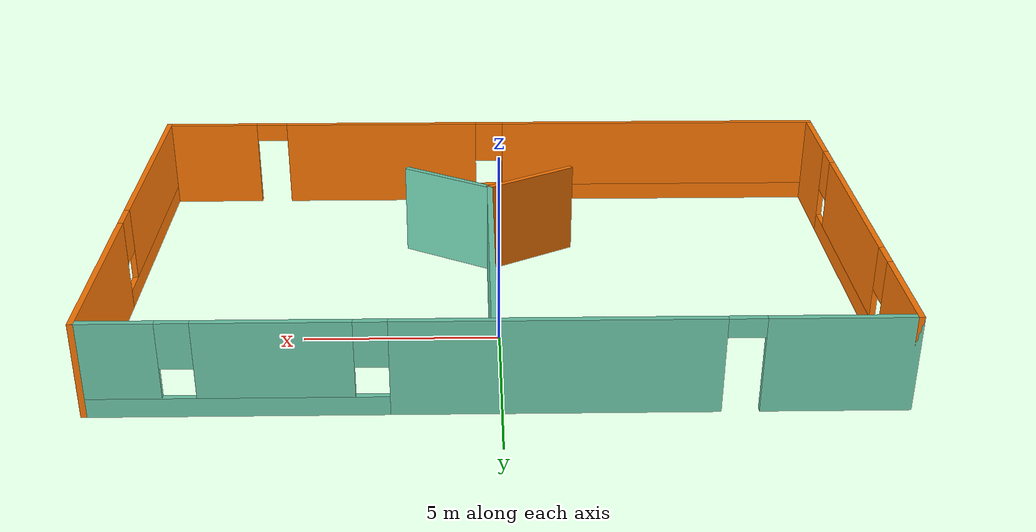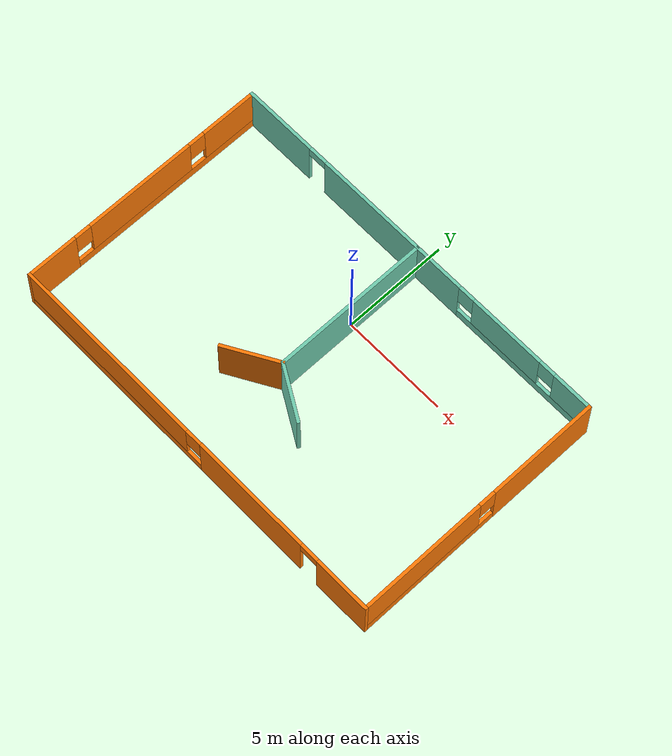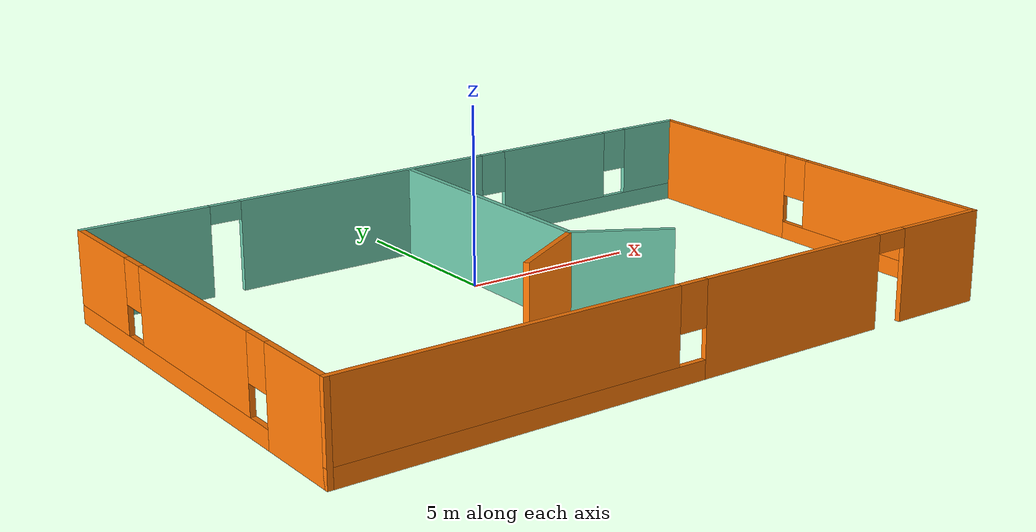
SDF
<?xml version='1.0'?>
<sdf version='1.6'>
  <model name='my_world'>
    <pose frame=''>0.104983 -2.59147 0 0 -0 0</pose>
    <link name='Wall_0'>
      <pose frame=''>0 6.05 0 0 -0 0</pose>
      <visual name='Wall_0_Visual_0'>
        <pose frame=''>-7.95518 0 1.25 0 -0 0</pose>
        <geometry>
          <box>
            <size>3.58965 0.15 2.5</size>
          </box>
        </geometry>
        <material>
          <script>
            <uri>file://media/materials/scripts/gazebo.material</uri>
            <name>Gazebo/Grey</name>
          </script>
          <ambient>0.435294 0.796078 0.67451 1</ambient>
        </material>
        <meta>
          <layer>0</layer>
        </meta>
      </visual>
      <collision name='Wall_0_Collision_0'>
        <geometry>
          <box>
            <size>3.58965 0.15 2.5</size>
          </box>
        </geometry>
        <pose frame=''>-7.95518 0 1.25 0 -0 0</pose>
      </collision>
      <visual name='Wall_0_Visual_1'>
        <pose frame=''>-1.37684 0 1.25 0 -0 0</pose>
        <geometry>
          <box>
            <size>7.76704 0.15 2.5</size>
          </box>
        </geometry>
        <material>
          <script>
            <uri>file://media/materials/scripts/gazebo.material</uri>
            <name>Gazebo/Grey</name>
          </script>
          <ambient>0.435294 0.796078 0.67451 1</ambient>
        </material>
        <meta>
          <layer>0</layer>
        </meta>
      </visual>
      <collision name='Wall_0_Collision_1'>
        <geometry>
          <box>
            <size>7.76704 0.15 2.5</size>
          </box>
        </geometry>
        <pose frame=''>-1.37684 0 1.25 0 -0 0</pose>
      </collision>
      <visual name='Wall_0_Visual_2'>
        <pose frame=''>6.12834 0 0.25 0 -0 0</pose>
        <geometry>
          <box>
            <size>7.24332 0.15 0.5</size>
          </box>
        </geometry>
        <material>
          <script>
            <uri>file://media/materials/scripts/gazebo.material</uri>
            <name>Gazebo/Grey</name>
          </script>
          <ambient>0.435294 0.796078 0.67451 1</ambient>
        </material>
        <meta>
          <layer>0</layer>
        </meta>
      </visual>
      <collision name='Wall_0_Collision_2'>
        <geometry>
          <box>
            <size>7.24332 0.15 0.5</size>
          </box>
        </geometry>
        <pose frame=''>6.12834 0 0.25 0 -0 0</pose>
      </collision>
      <visual name='Wall_0_Visual_3'>
        <pose frame=''>5.15197 0 1.5 0 -0 0</pose>
        <geometry>
          <box>
            <size>3.69057 0.15 2</size>
          </box>
        </geometry>
        <material>
          <script>
            <uri>file://media/materials/scripts/gazebo.material</uri>
            <name>Gazebo/Grey</name>
          </script>
          <ambient>0.435294 0.796078 0.67451 1</ambient>
        </material>
        <meta>
          <layer>0</layer>
        </meta>
      </visual>
      <collision name='Wall_0_Collision_3'>
        <geometry>
          <box>
            <size>3.69057 0.15 2</size>
          </box>
        </geometry>
        <pose frame=''>5.15197 0 1.5 0 -0 0</pose>
      </collision>
      <visual name='Wall_0_Visual_4'>
        <pose frame=''>8.77363 0 1.5 0 -0 0</pose>
        <geometry>
          <box>
            <size>1.95275 0.15 2</size>
          </box>
        </geometry>
        <material>
          <script>
            <uri>file://media/materials/scripts/gazebo.material</uri>
            <name>Gazebo/Grey</name>
          </script>
          <ambient>0.435294 0.796078 0.67451 1</ambient>
        </material>
        <meta>
          <layer>0</layer>
        </meta>
      </visual>
      <collision name='Wall_0_Collision_4'>
        <geometry>
          <box>
            <size>1.95275 0.15 2</size>
          </box>
        </geometry>
        <pose frame=''>8.77363 0 1.5 0 -0 0</pose>
      </collision>
      <visual name='Wall_0_Visual_5'>
        <pose frame=''>2.90668 0 1.9 0 -0 0</pose>
        <geometry>
          <box>
            <size>0.8 0.15 1.2</size>
          </box>
        </geometry>
        <material>
          <script>
            <uri>file://media/materials/scripts/gazebo.material</uri>
            <name>Gazebo/Grey</name>
          </script>
          <ambient>0.435294 0.796078 0.67451 1</ambient>
        </material>
        <meta>
          <layer>0</layer>
        </meta>
      </visual>
      <collision name='Wall_0_Collision_5'>
        <geometry>
          <box>
            <size>0.8 0.15 1.2</size>
          </box>
        </geometry>
        <pose frame=''>2.90668 0 1.9 0 -0 0</pose>
      </collision>
      <visual name='Wall_0_Visual_6'>
        <pose frame=''>7.39725 0 1.9 0 -0 0</pose>
        <geometry>
          <box>
            <size>0.8 0.15 1.2</size>
          </box>
        </geometry>
        <material>
          <script>
            <uri>file://media/materials/scripts/gazebo.material</uri>
            <name>Gazebo/Grey</name>
          </script>
          <ambient>0.435294 0.796078 0.67451 1</ambient>
        </material>
        <meta>
          <layer>0</layer>
        </meta>
      </visual>
      <collision name='Wall_0_Collision_6'>
        <geometry>
          <box>
            <size>0.8 0.15 1.2</size>
          </box>
        </geometry>
        <pose frame=''>7.39725 0 1.9 0 -0 0</pose>
      </collision>
      <visual name='Wall_0_Visual_7'>
        <pose frame=''>-5.71035 0 2.25 0 -0 0</pose>
        <geometry>
          <box>
            <size>0.9 0.15 0.5</size>
          </box>
        </geometry>
        <material>
          <script>
            <uri>file://media/materials/scripts/gazebo.material</uri>
            <name>Gazebo/Grey</name>
          </script>
          <ambient>0.435294 0.796078 0.67451 1</ambient>
        </material>
        <meta>
          <layer>0</layer>
        </meta>
      </visual>
      <collision name='Wall_0_Collision_7'>
        <geometry>
          <box>
            <size>0.9 0.15 0.5</size>
          </box>
        </geometry>
        <pose frame=''>-5.71035 0 2.25 0 -0 0</pose>
      </collision>
    </link>
    <link name='Wall_1'>
      <pose frame=''>9.675 0 0 0 0 -1.5708</pose>
      <visual name='Wall_1_Visual_0'>
        <pose frame=''>-3.47584 0 1.25 0 -0 0</pose>
        <geometry>
          <box>
            <size>5.29833 0.15 2.5</size>
          </box>
        </geometry>
        <material>
          <script>
            <uri>file://media/materials/scripts/gazebo.material</uri>
            <name>Gazebo/Grey</name>
          </script>
          <ambient>0.996078 0.47451 0.0196078 1</ambient>
        </material>
        <meta>
          <layer>0</layer>
        </meta>
      </visual>
      <collision name='Wall_1_Collision_0'>
        <geometry>
          <box>
            <size>5.29833 0.15 2.5</size>
          </box>
        </geometry>
        <pose frame=''>-3.47584 0 1.25 0 -0 0</pose>
      </collision>
      <visual name='Wall_1_Visual_1'>
        <pose frame=''>2.64916 0 0.25 0 -0 0</pose>
        <geometry>
          <box>
            <size>6.95167 0.15 0.5</size>
          </box>
        </geometry>
        <material>
          <script>
            <uri>file://media/materials/scripts/gazebo.material</uri>
            <name>Gazebo/Grey</name>
          </script>
          <ambient>0.996078 0.47451 0.0196078 1</ambient>
        </material>
        <meta>
          <layer>0</layer>
        </meta>
      </visual>
      <collision name='Wall_1_Collision_1'>
        <geometry>
          <box>
            <size>6.95167 0.15 0.5</size>
          </box>
        </geometry>
        <pose frame=''>2.64916 0 0.25 0 -0 0</pose>
      </collision>
      <visual name='Wall_1_Visual_2'>
        <pose frame=''>3.04916 0 1.5 0 -0 0</pose>
        <geometry>
          <box>
            <size>6.15168 0.15 2</size>
          </box>
        </geometry>
        <material>
          <script>
            <uri>file://media/materials/scripts/gazebo.material</uri>
            <name>Gazebo/Grey</name>
          </script>
          <ambient>0.996078 0.47451 0.0196078 1</ambient>
        </material>
        <meta>
          <layer>0</layer>
        </meta>
      </visual>
      <collision name='Wall_1_Collision_2'>
        <geometry>
          <box>
            <size>6.15168 0.15 2</size>
          </box>
        </geometry>
        <pose frame=''>3.04916 0 1.5 0 -0 0</pose>
      </collision>
      <visual name='Wall_1_Visual_3'>
        <pose frame=''>-0.426675 0 1.9 0 -0 0</pose>
        <geometry>
          <box>
            <size>0.8 0.15 1.2</size>
          </box>
        </geometry>
        <material>
          <script>
            <uri>file://media/materials/scripts/gazebo.material</uri>
            <name>Gazebo/Grey</name>
          </script>
          <ambient>0.996078 0.47451 0.0196078 1</ambient>
        </material>
        <meta>
          <layer>0</layer>
        </meta>
      </visual>
      <collision name='Wall_1_Collision_3'>
        <geometry>
          <box>
            <size>0.8 0.15 1.2</size>
          </box>
        </geometry>
        <pose frame=''>-0.426675 0 1.9 0 -0 0</pose>
      </collision>
    </link>
    <link name='Wall_2'>
      <pose frame=''>0 -6.05 0 0 -0 3.14159</pose>
      <visual name='Wall_2_Visual_0'>
        <pose frame=''>-8.39407 0 1.25 0 -0 0</pose>
        <geometry>
          <box>
            <size>2.71186 0.15 2.5</size>
          </box>
        </geometry>
        <material>
          <script>
            <uri>file://media/materials/scripts/gazebo.material</uri>
            <name>Gazebo/Grey</name>
          </script>
          <ambient>0.996078 0.47451 0.0196078 1</ambient>
        </material>
        <meta>
          <layer>0</layer>
        </meta>
      </visual>
      <collision name='Wall_2_Collision_0'>
        <geometry>
          <box>
            <size>2.71186 0.15 2.5</size>
          </box>
        </geometry>
        <pose frame=''>-8.39407 0 1.25 0 -0 0</pose>
      </collision>
      <visual name='Wall_2_Visual_1'>
        <pose frame=''>-3.28624 0 1.25 0 -0 0</pose>
        <geometry>
          <box>
            <size>5.7038 0.15 2.5</size>
          </box>
        </geometry>
        <material>
          <script>
            <uri>file://media/materials/scripts/gazebo.material</uri>
            <name>Gazebo/Grey</name>
          </script>
          <ambient>0.996078 0.47451 0.0196078 1</ambient>
        </material>
        <meta>
          <layer>0</layer>
        </meta>
      </visual>
      <collision name='Wall_2_Collision_1'>
        <geometry>
          <box>
            <size>5.7038 0.15 2.5</size>
          </box>
        </geometry>
        <pose frame=''>-3.28624 0 1.25 0 -0 0</pose>
      </collision>
      <visual name='Wall_2_Visual_2'>
        <pose frame=''>4.65783 0 0.25 0 -0 0</pose>
        <geometry>
          <box>
            <size>10.1843 0.15 0.5</size>
          </box>
        </geometry>
        <material>
          <script>
            <uri>file://media/materials/scripts/gazebo.material</uri>
            <name>Gazebo/Grey</name>
          </script>
          <ambient>0.996078 0.47451 0.0196078 1</ambient>
        </material>
        <meta>
          <layer>0</layer>
        </meta>
      </visual>
      <collision name='Wall_2_Collision_2'>
        <geometry>
          <box>
            <size>10.1843 0.15 0.5</size>
          </box>
        </geometry>
        <pose frame=''>4.65783 0 0.25 0 -0 0</pose>
      </collision>
      <visual name='Wall_2_Visual_3'>
        <pose frame=''>5.05783 0 1.5 0 -0 0</pose>
        <geometry>
          <box>
            <size>9.38434 0.15 2</size>
          </box>
        </geometry>
        <material>
          <script>
            <uri>file://media/materials/scripts/gazebo.material</uri>
            <name>Gazebo/Grey</name>
          </script>
          <ambient>0.996078 0.47451 0.0196078 1</ambient>
        </material>
        <meta>
          <layer>0</layer>
        </meta>
      </visual>
      <collision name='Wall_2_Collision_3'>
        <geometry>
          <box>
            <size>9.38434 0.15 2</size>
          </box>
        </geometry>
        <pose frame=''>5.05783 0 1.5 0 -0 0</pose>
      </collision>
      <visual name='Wall_2_Visual_4'>
        <pose frame=''>-0.034339 0 1.9 0 -0 0</pose>
        <geometry>
          <box>
            <size>0.8 0.15 1.2</size>
          </box>
        </geometry>
        <material>
          <script>
            <uri>file://media/materials/scripts/gazebo.material</uri>
            <name>Gazebo/Grey</name>
          </script>
          <ambient>0.996078 0.47451 0.0196078 1</ambient>
        </material>
        <meta>
          <layer>0</layer>
        </meta>
      </visual>
      <collision name='Wall_2_Collision_4'>
        <geometry>
          <box>
            <size>0.8 0.15 1.2</size>
          </box>
        </geometry>
        <pose frame=''>-0.034339 0 1.9 0 -0 0</pose>
      </collision>
      <visual name='Wall_2_Visual_5'>
        <pose frame=''>-6.58814 0 2.25 0 -0 0</pose>
        <geometry>
          <box>
            <size>0.9 0.15 0.5</size>
          </box>
        </geometry>
        <material>
          <script>
            <uri>file://media/materials/scripts/gazebo.material</uri>
            <name>Gazebo/Grey</name>
          </script>
          <ambient>0.996078 0.47451 0.0196078 1</ambient>
        </material>
        <meta>
          <layer>0</layer>
        </meta>
      </visual>
      <collision name='Wall_2_Collision_5'>
        <geometry>
          <box>
            <size>0.9 0.15 0.5</size>
          </box>
        </geometry>
        <pose frame=''>-6.58814 0 2.25 0 -0 0</pose>
      </collision>
    </link>
    <link name='Wall_3'>
      <pose frame=''>-9.675 0 0 0 -0 1.5708</pose>
      <visual name='Wall_3_Visual_0'>
        <pose frame=''>-4.88989 0 1.25 0 -0 0</pose>
        <geometry>
          <box>
            <size>2.47022 0.15 2.5</size>
          </box>
        </geometry>
        <material>
          <script>
            <uri>file://media/materials/scripts/gazebo.material</uri>
            <name>Gazebo/Grey</name>
          </script>
          <ambient>0.996078 0.47451 0.0196078 1</ambient>
        </material>
        <meta>
          <layer>0</layer>
        </meta>
      </visual>
      <collision name='Wall_3_Collision_0'>
        <geometry>
          <box>
            <size>2.47022 0.15 2.5</size>
          </box>
        </geometry>
        <pose frame=''>-4.88989 0 1.25 0 -0 0</pose>
      </collision>
      <visual name='Wall_3_Visual_1'>
        <pose frame=''>1.23511 0 0.25 0 -0 0</pose>
        <geometry>
          <box>
            <size>9.77978 0.15 0.5</size>
          </box>
        </geometry>
        <material>
          <script>
            <uri>file://media/materials/scripts/gazebo.material</uri>
            <name>Gazebo/Grey</name>
          </script>
          <ambient>0.996078 0.47451 0.0196078 1</ambient>
        </material>
        <meta>
          <layer>0</layer>
        </meta>
      </visual>
      <collision name='Wall_3_Collision_1'>
        <geometry>
          <box>
            <size>9.77978 0.15 0.5</size>
          </box>
        </geometry>
        <pose frame=''>1.23511 0 0.25 0 -0 0</pose>
      </collision>
      <visual name='Wall_3_Visual_2'>
        <pose frame=''>-0.159931 0 1.5 0 -0 0</pose>
        <geometry>
          <box>
            <size>5.3897 0.15 2</size>
          </box>
        </geometry>
        <material>
          <script>
            <uri>file://media/materials/scripts/gazebo.material</uri>
            <name>Gazebo/Grey</name>
          </script>
          <ambient>0.996078 0.47451 0.0196078 1</ambient>
        </material>
        <meta>
          <layer>0</layer>
        </meta>
      </visual>
      <collision name='Wall_3_Collision_2'>
        <geometry>
          <box>
            <size>5.3897 0.15 2</size>
          </box>
        </geometry>
        <pose frame=''>-0.159931 0 1.5 0 -0 0</pose>
      </collision>
      <visual name='Wall_3_Visual_3'>
        <pose frame=''>4.72996 0 1.5 0 -0 0</pose>
        <geometry>
          <box>
            <size>2.79008 0.15 2</size>
          </box>
        </geometry>
        <material>
          <script>
            <uri>file://media/materials/scripts/gazebo.material</uri>
            <name>Gazebo/Grey</name>
          </script>
          <ambient>0.996078 0.47451 0.0196078 1</ambient>
        </material>
        <meta>
          <layer>0</layer>
        </meta>
      </visual>
      <collision name='Wall_3_Collision_3'>
        <geometry>
          <box>
            <size>2.79008 0.15 2</size>
          </box>
        </geometry>
        <pose frame=''>4.72996 0 1.5 0 -0 0</pose>
      </collision>
      <visual name='Wall_3_Visual_4'>
        <pose frame=''>-3.25478 0 1.9 0 -0 0</pose>
        <geometry>
          <box>
            <size>0.8 0.15 1.2</size>
          </box>
        </geometry>
        <material>
          <script>
            <uri>file://media/materials/scripts/gazebo.material</uri>
            <name>Gazebo/Grey</name>
          </script>
          <ambient>0.996078 0.47451 0.0196078 1</ambient>
        </material>
        <meta>
          <layer>0</layer>
        </meta>
      </visual>
      <collision name='Wall_3_Collision_4'>
        <geometry>
          <box>
            <size>0.8 0.15 1.2</size>
          </box>
        </geometry>
        <pose frame=''>-3.25478 0 1.9 0 -0 0</pose>
      </collision>
      <visual name='Wall_3_Visual_5'>
        <pose frame=''>2.93492 0 1.9 0 -0 0</pose>
        <geometry>
          <box>
            <size>0.8 0.15 1.2</size>
          </box>
        </geometry>
        <material>
          <script>
            <uri>file://media/materials/scripts/gazebo.material</uri>
            <name>Gazebo/Grey</name>
          </script>
          <ambient>0.996078 0.47451 0.0196078 1</ambient>
        </material>
        <meta>
          <layer>0</layer>
        </meta>
      </visual>
      <collision name='Wall_3_Collision_5'>
        <geometry>
          <box>
            <size>0.8 0.15 1.2</size>
          </box>
        </geometry>
        <pose frame=''>2.93492 0 1.9 0 -0 0</pose>
      </collision>
    </link>
    <link name='Wall_5'>
      <collision name='Wall_5_Collision'>
        <geometry>
          <box>
            <size>7.5 0.15 2.5</size>
          </box>
        </geometry>
        <pose frame=''>0 0 1.25 0 -0 0</pose>
      </collision>
      <visual name='Wall_5_Visual'>
        <pose frame=''>0 0 1.25 0 -0 0</pose>
        <geometry>
          <box>
            <size>7.5 0.15 2.5</size>
          </box>
        </geometry>
        <material>
          <script>
            <uri>file://media/materials/scripts/gazebo.material</uri>
            <name>Gazebo/Grey</name>
          </script>
          <ambient>0.435294 0.796078 0.67451 1</ambient>
        </material>
        <meta>
          <layer>0</layer>
        </meta>
      </visual>
      <pose frame=''>0.074794 2.33454 0 0 0 -1.5708</pose>
    </link>
    <link name='Wall_6'>
      <collision name='Wall_6_Collision'>
        <geometry>
          <box>
            <size>2.75 0.15 2.5</size>
          </box>
        </geometry>
        <pose frame=''>0 0 1.25 0 -0 0</pose>
      </collision>
      <visual name='Wall_6_Visual'>
        <pose frame=''>0 0 1.25 0 -0 0</pose>
        <geometry>
          <box>
            <size>2.75 0.15 2.5</size>
          </box>
        </geometry>
        <material>
          <script>
            <uri>file://media/materials/scripts/gazebo.material</uri>
            <name>Gazebo/Grey</name>
          </script>
          <ambient>0.996078 0.47451 0.0196078 1</ambient>
        </material>
        <meta>
          <layer>0</layer>
        </meta>
      </visual>
      <pose frame=''>-1.05104 -1.99046 0 0 0 -2.61799</pose>
    </link>
    <link name='Wall_8'>
      <collision name='Wall_8_Collision'>
        <geometry>
          <box>
            <size>2.75 0.15 2.5</size>
          </box>
        </geometry>
        <pose frame=''>0 0 1.25 0 -0 0</pose>
      </collision>
      <visual name='Wall_8_Visual'>
        <pose frame=''>0 0 1.25 0 -0 0</pose>
        <geometry>
          <box>
            <size>2.75 0.15 2.5</size>
          </box>
        </geometry>
        <material>
          <script>
            <uri>file://media/materials/scripts/gazebo.material</uri>
            <name>Gazebo/Grey</name>
          </script>
          <ambient>0.435294 0.796078 0.67451 1</ambient>
        </material>
        <meta>
          <layer>0</layer>
        </meta>
      </visual>
      <pose frame=''>1.20063 -1.99046 0 0 0 -0.523599</pose>
    </link>
    <static>1</static>
  </model>
</sdf>
